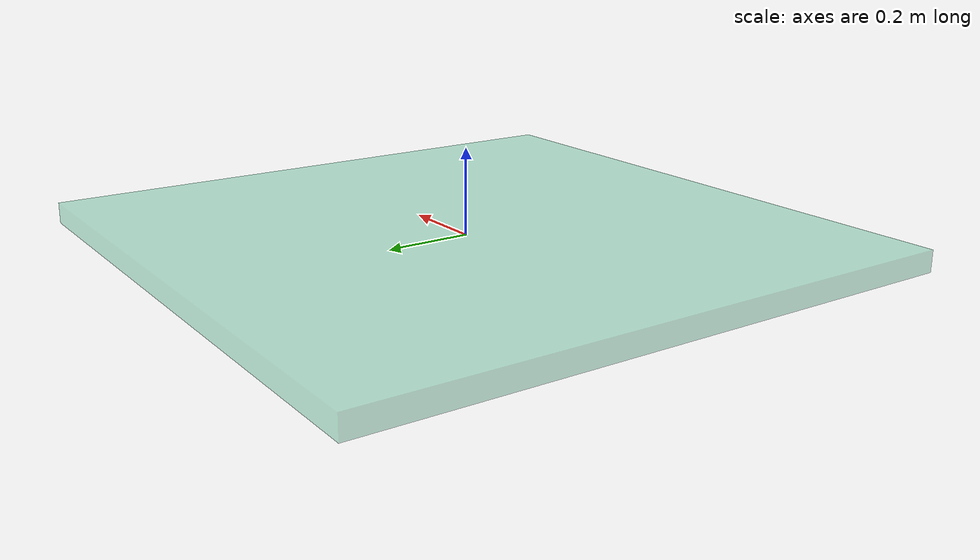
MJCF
<mujoco model="semantic_target_region">
  <worldbody>
    <!--
      目标区域是场景语义标记，不参与碰撞。Layout 可覆盖颜色、尺寸和位姿；
      这里的默认几何只保证 Scene Package 在没有私有素材时仍可独立加载。
    -->
    <body name="target">
      <geom
        name="target_visual"
        type="box"
        size="0.7 0.7 0.025"
        rgba="0.25 0.75 0.55 0.38"
        contype="0"
        conaffinity="0"
      />
    </body>
  </worldbody>
</mujoco>
